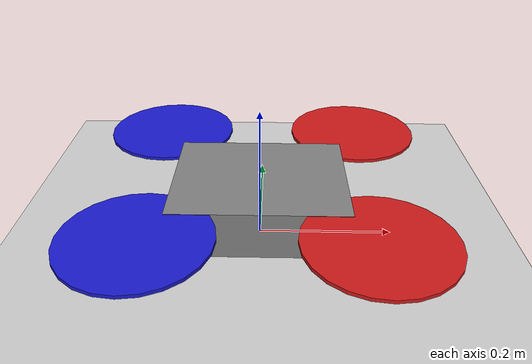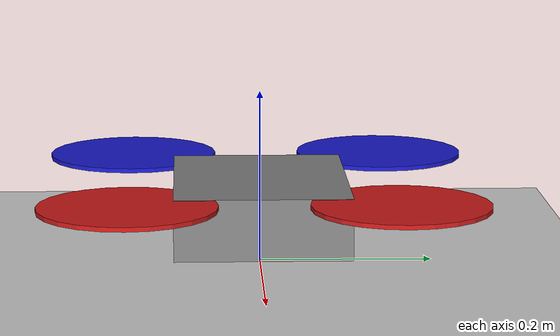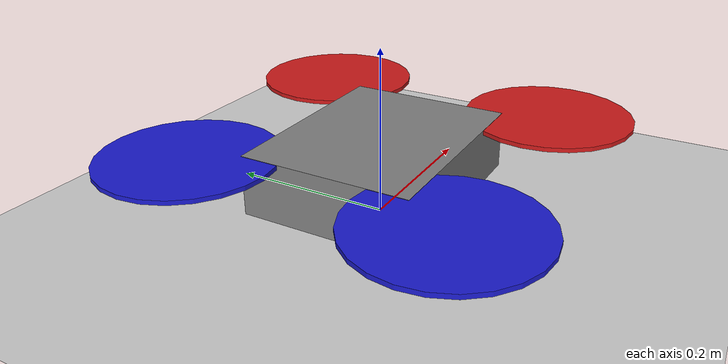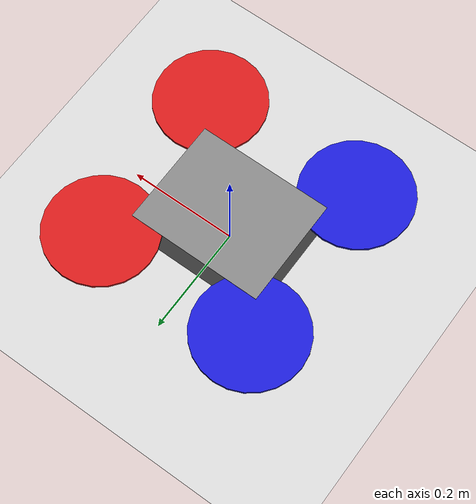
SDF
<?xml version="1.0"?>
<sdf version="1.9">
  <world name="course_quadrotor">

    <plugin filename="gz-sim-physics-system"
            name="gz::sim::systems::Physics"/>
    <plugin filename="gz-sim-user-commands-system"
            name="gz::sim::systems::UserCommands"/>
    <plugin filename="gz-sim-scene-broadcaster-system"
            name="gz::sim::systems::SceneBroadcaster"/>
    <plugin filename="gz-sim-imu-system"
            name="gz::sim::systems::Imu"/>

    <physics name="default_physics" type="ode">
      <max_step_size>0.001</max_step_size>
      <real_time_factor>1.0</real_time_factor>
    </physics>

    <scene>
      <ambient>0.6 0.6 0.6 1</ambient>
      <background>0.7 0.8 0.9 1</background>
      <shadows>false</shadows>
    </scene>

    <light type="directional" name="sun">
      <cast_shadows>false</cast_shadows>
      <pose>0 0 10 0 0 0</pose>
      <diffuse>0.9 0.9 0.9 1</diffuse>
      <specular>0.2 0.2 0.2 1</specular>
      <direction>-0.5 0.2 -0.9</direction>
    </light>

    <model name="ground_plane">
      <static>true</static>
      <link name="link">
        <collision name="collision">
          <geometry>
            <plane>
              <normal>0 0 1</normal>
              <size>100 100</size>
            </plane>
          </geometry>
        </collision>
        <visual name="visual">
          <geometry>
            <plane>
              <normal>0 0 1</normal>
              <size>100 100</size>
            </plane>
          </geometry>
          <material>
            <ambient>0.8 0.8 0.8 1</ambient>
            <diffuse>0.8 0.8 0.8 1</diffuse>
          </material>
        </visual>
      </link>
    </model>

    <model name="quadrotor">
      <pose>0 0 0.065 0 0 0</pose>

      <link name="base_link">
        <inertial>
          <mass>0.48</mass>
          <inertia>
            <ixx>0.0116</ixx>
            <ixy>0</ixy>
            <ixz>0</ixz>
            <iyy>0.0233</iyy>
            <iyz>0</iyz>
            <izz>0.0326</izz>
          </inertia>
        </inertial>
        <collision name="base_link_collision">
          <geometry>
            <box>
              <size>0.25 0.20 0.07</size>
            </box>
          </geometry>
        </collision>
        <visual name="base_link_visual">
          <geometry>
            <box>
              <size>0.25 0.20 0.07</size>
            </box>
          </geometry>
          <material>
            <ambient>0.3 0.3 0.3 1</ambient>
            <diffuse>0.5 0.5 0.5 1</diffuse>
          </material>
        </visual>

        <sensor name="imu_sensor" type="imu">
          <always_on>1</always_on>
          <update_rate>125</update_rate>
          <topic>imu</topic>
        </sensor>
      </link>

      <link name="rotor_0">
        <pose>0.15 -0.15 0.032 0 0 0</pose>
        <inertial>
          <mass>0.005</mass>
          <inertia>
            <ixx>9.75e-07</ixx>
            <ixy>0</ixy>
            <ixz>0</ixz>
            <iyy>4.17041e-05</iyy>
            <iyz>0</iyz>
            <izz>4.26041e-05</izz>
          </inertia>
        </inertial>
        <visual name="rotor_0_visual">
          <geometry>
            <cylinder>
              <length>0.005</length>
              <radius>0.1</radius>
            </cylinder>
          </geometry>
          <material>
            <ambient>0.8 0.1 0.1 1</ambient>
            <diffuse>0.8 0.1 0.1 1</diffuse>
          </material>
        </visual>
      </link>
      <joint name="rotor_0_joint" type="revolute">
        <parent>base_link</parent>
        <child>rotor_0</child>
        <axis>
          <xyz>0 0 1</xyz>
          <limit>
            <lower>-1e+16</lower>
            <upper>1e+16</upper>
          </limit>
        </axis>
      </joint>

      <!-- Rotor 1: front left -->
      <link name="rotor_1">
        <pose>0.15 0.15 0.032 0 0 0</pose>
        <inertial>
          <mass>0.005</mass>
          <inertia>
            <ixx>9.75e-07</ixx>
            <ixy>0</ixy>
            <ixz>0</ixz>
            <iyy>4.17041e-05</iyy>
            <iyz>0</iyz>
            <izz>4.26041e-05</izz>
          </inertia>
        </inertial>
        <visual name="rotor_1_visual">
          <geometry>
            <cylinder>
              <length>0.005</length>
              <radius>0.1</radius>
            </cylinder>
          </geometry>
          <material>
            <ambient>0.8 0.1 0.1 1</ambient>
            <diffuse>0.8 0.1 0.1 1</diffuse>
          </material>
        </visual>
      </link>
      <joint name="rotor_1_joint" type="revolute">
        <parent>base_link</parent>
        <child>rotor_1</child>
        <axis>
          <xyz>0 0 1</xyz>
          <limit>
            <lower>-1e+16</lower>
            <upper>1e+16</upper>
          </limit>
        </axis>
      </joint>

      <!-- Rotor 2: rear right -->
      <link name="rotor_2">
        <pose>-0.15 -0.15 0.032 0 0 0</pose>
        <inertial>
          <mass>0.005</mass>
          <inertia>
            <ixx>9.75e-07</ixx>
            <ixy>0</ixy>
            <ixz>0</ixz>
            <iyy>4.17041e-05</iyy>
            <iyz>0</iyz>
            <izz>4.26041e-05</izz>
          </inertia>
        </inertial>
        <visual name="rotor_2_visual">
          <geometry>
            <cylinder>
              <length>0.005</length>
              <radius>0.1</radius>
            </cylinder>
          </geometry>
          <material>
            <ambient>0.1 0.1 0.8 1</ambient>
            <diffuse>0.1 0.1 0.8 1</diffuse>
          </material>
        </visual>
      </link>
      <joint name="rotor_2_joint" type="revolute">
        <parent>base_link</parent>
        <child>rotor_2</child>
        <axis>
          <xyz>0 0 1</xyz>
          <limit>
            <lower>-1e+16</lower>
            <upper>1e+16</upper>
          </limit>
        </axis>
      </joint>

      <!-- Rotor 3: rear left -->
      <link name="rotor_3">
        <pose>-0.15 0.15 0.032 0 0 0</pose>
        <inertial>
          <mass>0.005</mass>
          <inertia>
            <ixx>9.75e-07</ixx>
            <ixy>0</ixy>
            <ixz>0</ixz>
            <iyy>4.17041e-05</iyy>
            <iyz>0</iyz>
            <izz>4.26041e-05</izz>
          </inertia>
        </inertial>
        <visual name="rotor_3_visual">
          <geometry>
            <cylinder>
              <length>0.005</length>
              <radius>0.1</radius>
            </cylinder>
          </geometry>
          <material>
            <ambient>0.1 0.1 0.8 1</ambient>
            <diffuse>0.1 0.1 0.8 1</diffuse>
          </material>
        </visual>
      </link>
      <joint name="rotor_3_joint" type="revolute">
        <parent>base_link</parent>
        <child>rotor_3</child>
        <axis>
          <xyz>0 0 1</xyz>
          <limit>
            <lower>-1e+16</lower>
            <upper>1e+16</upper>
          </limit>
        </axis>
      </joint>

      <plugin filename="gz-sim-multicopter-motor-model-system"
              name="gz::sim::systems::MulticopterMotorModel">
        <robotNamespace>quadrotor</robotNamespace>
        <jointName>rotor_0_joint</jointName>
        <linkName>rotor_0</linkName>
        <turningDirection>cw</turningDirection>
        <timeConstantUp>0.0125</timeConstantUp>
        <timeConstantDown>0.025</timeConstantDown>
        <maxRotVelocity>576.0</maxRotVelocity>
        <motorConstant>2.6e-04</motorConstant>
        <momentConstant>0.02</momentConstant>
        <commandSubTopic>command/motor_speed</commandSubTopic>
        <motorNumber>0</motorNumber>
        <rotorDragCoefficient>8.06428e-05</rotorDragCoefficient>
        <rollingMomentCoefficient>1e-06</rollingMomentCoefficient>
        <motorSpeedPubTopic>motor_speed/0</motorSpeedPubTopic>
        <rotorVelocitySlowdownSim>1</rotorVelocitySlowdownSim>
        <motorType>velocity</motorType>
      </plugin>
      <plugin filename="gz-sim-multicopter-motor-model-system"
              name="gz::sim::systems::MulticopterMotorModel">
        <robotNamespace>quadrotor</robotNamespace>
        <jointName>rotor_1_joint</jointName>
        <linkName>rotor_1</linkName>
        <turningDirection>ccw</turningDirection>
        <timeConstantUp>0.0125</timeConstantUp>
        <timeConstantDown>0.025</timeConstantDown>
        <maxRotVelocity>576.0</maxRotVelocity>
        <motorConstant>2.6e-04</motorConstant>
        <momentConstant>0.02</momentConstant>
        <commandSubTopic>command/motor_speed</commandSubTopic>
        <motorNumber>1</motorNumber>
        <rotorDragCoefficient>8.06428e-05</rotorDragCoefficient>
        <rollingMomentCoefficient>1e-06</rollingMomentCoefficient>
        <motorSpeedPubTopic>motor_speed/1</motorSpeedPubTopic>
        <rotorVelocitySlowdownSim>1</rotorVelocitySlowdownSim>
        <motorType>velocity</motorType>
      </plugin>
      <plugin filename="gz-sim-multicopter-motor-model-system"
              name="gz::sim::systems::MulticopterMotorModel">
        <robotNamespace>quadrotor</robotNamespace>
        <jointName>rotor_2_joint</jointName>
        <linkName>rotor_2</linkName>
        <turningDirection>ccw</turningDirection>
        <timeConstantUp>0.0125</timeConstantUp>
        <timeConstantDown>0.025</timeConstantDown>
        <maxRotVelocity>576.0</maxRotVelocity>
        <motorConstant>2.6e-04</motorConstant>
        <momentConstant>0.02</momentConstant>
        <commandSubTopic>command/motor_speed</commandSubTopic>
        <motorNumber>2</motorNumber>
        <rotorDragCoefficient>8.06428e-05</rotorDragCoefficient>
        <rollingMomentCoefficient>1e-06</rollingMomentCoefficient>
        <motorSpeedPubTopic>motor_speed/2</motorSpeedPubTopic>
        <rotorVelocitySlowdownSim>1</rotorVelocitySlowdownSim>
        <motorType>velocity</motorType>
      </plugin>
      <plugin filename="gz-sim-multicopter-motor-model-system"
              name="gz::sim::systems::MulticopterMotorModel">
        <robotNamespace>quadrotor</robotNamespace>
        <jointName>rotor_3_joint</jointName>
        <linkName>rotor_3</linkName>
        <turningDirection>cw</turningDirection>
        <timeConstantUp>0.0125</timeConstantUp>
        <timeConstantDown>0.025</timeConstantDown>
        <maxRotVelocity>576.0</maxRotVelocity>
        <motorConstant>2.6e-04</motorConstant>
        <momentConstant>0.02</momentConstant>
        <commandSubTopic>command/motor_speed</commandSubTopic>
        <motorNumber>3</motorNumber>
        <rotorDragCoefficient>8.06428e-05</rotorDragCoefficient>
        <rollingMomentCoefficient>1e-06</rollingMomentCoefficient>
        <motorSpeedPubTopic>motor_speed/3</motorSpeedPubTopic>
        <rotorVelocitySlowdownSim>1</rotorVelocitySlowdownSim>
        <motorType>velocity</motorType>
      </plugin>

      <!-- Height for the exercise files, via gps_bridge.py. dimensions 3
           because altitude is the whole point here. -->
      <plugin filename="gz-sim-odometry-publisher-system"
              name="gz::sim::systems::OdometryPublisher">
        <dimensions>3</dimensions>
        <odom_publish_frequency>125</odom_publish_frequency>
      </plugin>
    </model>

  </world>
</sdf>
